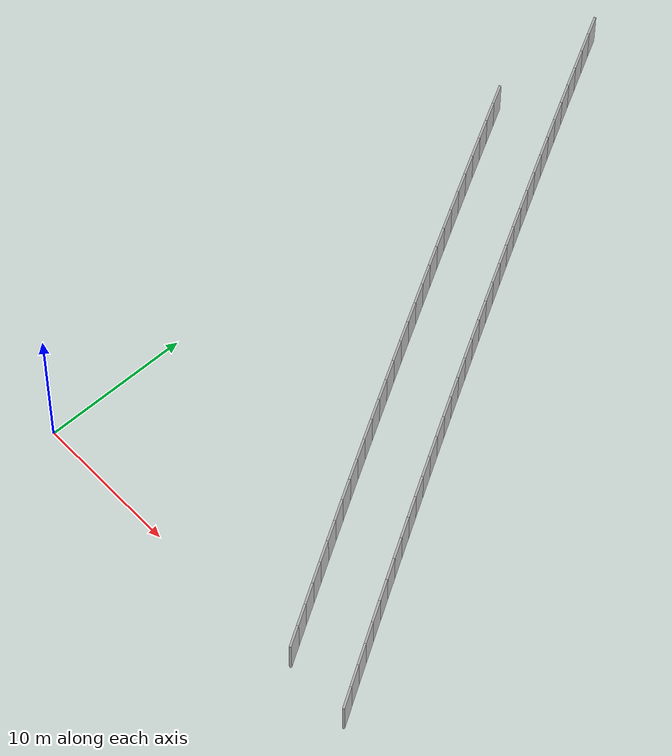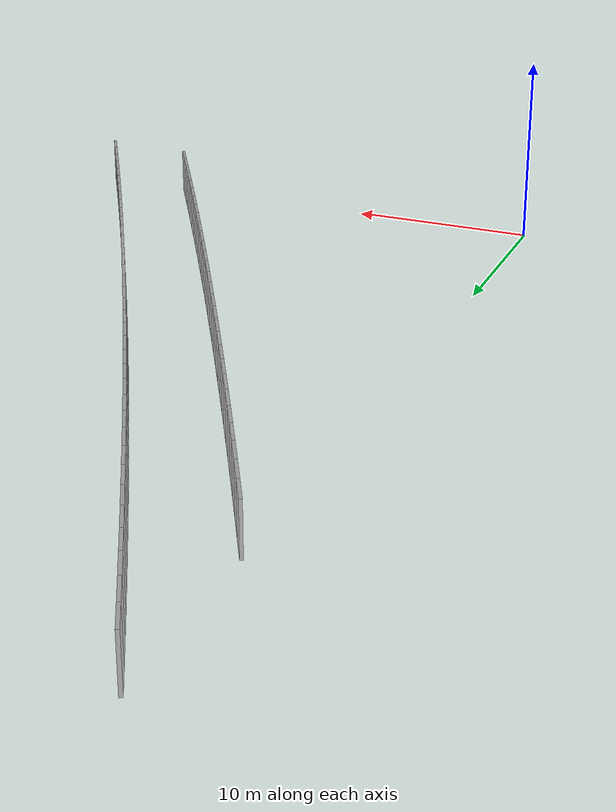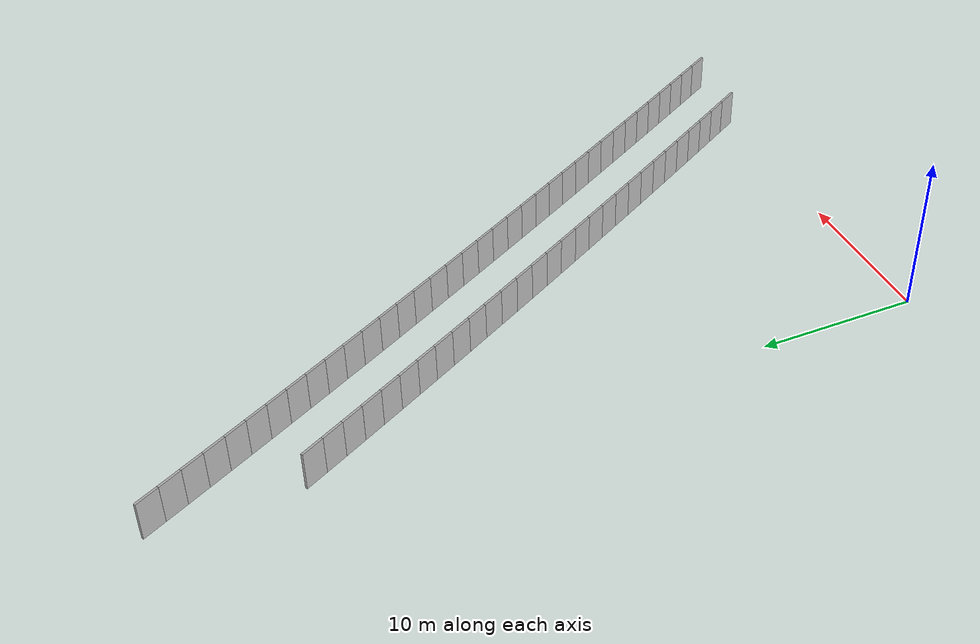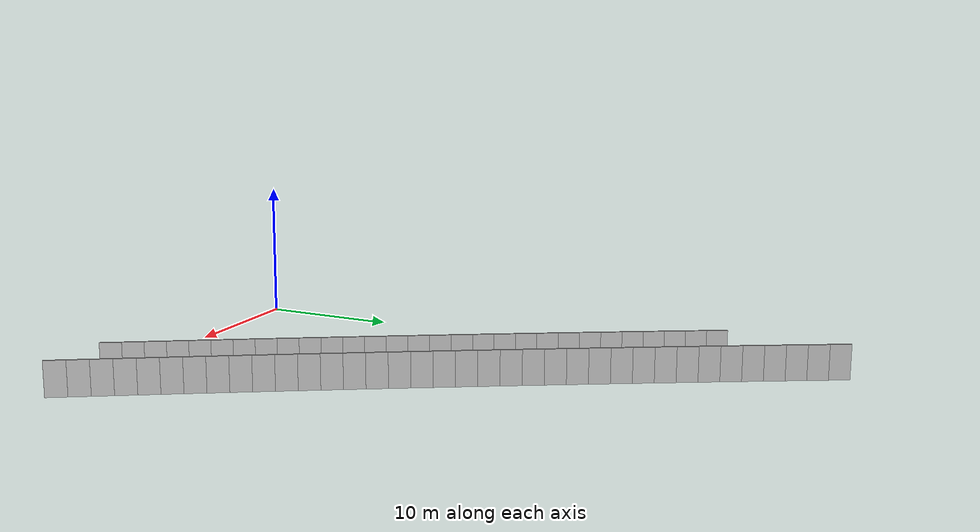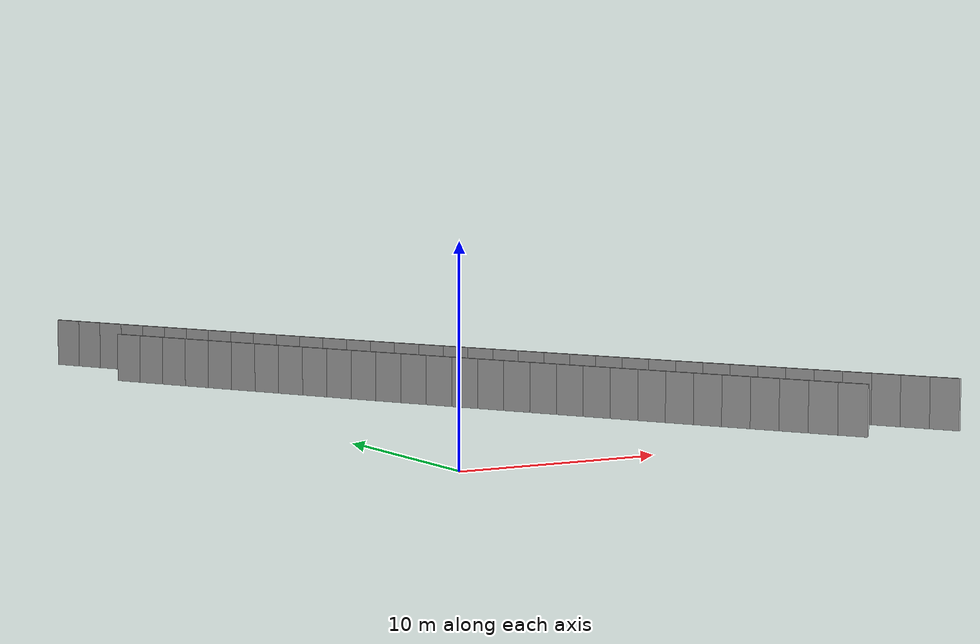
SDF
<?xml version="1.0" ?>
<sdf version="1.6">
  <model name="sps_0613">
    <pose frame="">0 0 0 0 -0 0</pose>
    <static>1</static>
    <self_collide>0</self_collide>
    <allow_auto_disable>0</allow_auto_disable>
    <link name="Wall8332">
      <kinematic>0</kinematic>
      <gravity>1</gravity>
      <self_collide>0</self_collide>
      <collision name="collision">
        <geometry>
          <box>
            <size>1.49884 0.15 2.5</size>
          </box>
        </geometry>
        <pose frame="">0 0 0 0 -0 0</pose>
      </collision>
      <visual name="visual">
        <geometry>
          <box>
            <size>1.49884 0.15 2.5</size>
          </box>
        </geometry>
        <pose frame="">0 0 0 0 -0 0</pose>
        <cast_shadows>1</cast_shadows>
        <transparency>0.0</transparency>
      </visual>
      <pose frame="">0.592246 36.9346 1.25 0 0 -1.0703</pose>
    </link>
    <link name="Wall8333">
      <kinematic>0</kinematic>
      <gravity>1</gravity>
      <self_collide>0</self_collide>
      <collision name="collision">
        <geometry>
          <box>
            <size>1.49901 0.15 2.5</size>
          </box>
        </geometry>
        <pose frame="">0 0 0 0 -0 0</pose>
      </collision>
      <visual name="visual">
        <geometry>
          <box>
            <size>1.49901 0.15 2.5</size>
          </box>
        </geometry>
        <pose frame="">0 0 0 0 -0 0</pose>
        <cast_shadows>1</cast_shadows>
        <transparency>0.0</transparency>
      </visual>
      <pose frame="">1.31255 35.6201 1.25 0 0 -1.06874</pose>
    </link>
    <link name="Wall8334">
      <kinematic>0</kinematic>
      <gravity>1</gravity>
      <self_collide>0</self_collide>
      <collision name="collision">
        <geometry>
          <box>
            <size>1.49908 0.15 2.5</size>
          </box>
        </geometry>
        <pose frame="">0 0 0 0 -0 0</pose>
      </collision>
      <visual name="visual">
        <geometry>
          <box>
            <size>1.49908 0.15 2.5</size>
          </box>
        </geometry>
        <pose frame="">0 0 0 0 -0 0</pose>
        <cast_shadows>1</cast_shadows>
        <transparency>0.0</transparency>
      </visual>
      <pose frame="">2.03493 34.3066 1.25 0 0 -1.06723</pose>
    </link>
    <link name="Wall8335">
      <kinematic>0</kinematic>
      <gravity>1</gravity>
      <self_collide>0</self_collide>
      <collision name="collision">
        <geometry>
          <box>
            <size>1.49903 0.15 2.5</size>
          </box>
        </geometry>
        <pose frame="">0 0 0 0 -0 0</pose>
      </collision>
      <visual name="visual">
        <geometry>
          <box>
            <size>1.49903 0.15 2.5</size>
          </box>
        </geometry>
        <pose frame="">0 0 0 0 -0 0</pose>
        <cast_shadows>1</cast_shadows>
        <transparency>0.0</transparency>
      </visual>
      <pose frame="">2.75933 32.9942 1.25 0 0 -1.06568</pose>
    </link>
    <link name="Wall8336">
      <kinematic>0</kinematic>
      <gravity>1</gravity>
      <self_collide>0</self_collide>
      <collision name="collision">
        <geometry>
          <box>
            <size>1.49894 0.15 2.5</size>
          </box>
        </geometry>
        <pose frame="">0 0 0 0 -0 0</pose>
      </collision>
      <visual name="visual">
        <geometry>
          <box>
            <size>1.49894 0.15 2.5</size>
          </box>
        </geometry>
        <pose frame="">0 0 0 0 -0 0</pose>
        <cast_shadows>1</cast_shadows>
        <transparency>0.0</transparency>
      </visual>
      <pose frame="">3.48574 31.683 1.25 0 0 -1.06411</pose>
    </link>
    <link name="Wall8337">
      <kinematic>0</kinematic>
      <gravity>1</gravity>
      <self_collide>0</self_collide>
      <collision name="collision">
        <geometry>
          <box>
            <size>1.49894 0.15 2.5</size>
          </box>
        </geometry>
        <pose frame="">0 0 0 0 -0 0</pose>
      </collision>
      <visual name="visual">
        <geometry>
          <box>
            <size>1.49894 0.15 2.5</size>
          </box>
        </geometry>
        <pose frame="">0 0 0 0 -0 0</pose>
        <cast_shadows>1</cast_shadows>
        <transparency>0.0</transparency>
      </visual>
      <pose frame="">4.21426 30.373 1.25 0 0 -1.06243</pose>
    </link>
    <link name="Wall8338">
      <kinematic>0</kinematic>
      <gravity>1</gravity>
      <self_collide>0</self_collide>
      <collision name="collision">
        <geometry>
          <box>
            <size>1.49883 0.15 2.5</size>
          </box>
        </geometry>
        <pose frame="">0 0 0 0 -0 0</pose>
      </collision>
      <visual name="visual">
        <geometry>
          <box>
            <size>1.49883 0.15 2.5</size>
          </box>
        </geometry>
        <pose frame="">0 0 0 0 -0 0</pose>
        <cast_shadows>1</cast_shadows>
        <transparency>0.0</transparency>
      </visual>
      <pose frame="">4.94485 29.0642 1.25 0 0 -1.06089</pose>
    </link>
    <link name="Wall8339">
      <kinematic>0</kinematic>
      <gravity>1</gravity>
      <self_collide>0</self_collide>
      <collision name="collision">
        <geometry>
          <box>
            <size>1.49901 0.15 2.5</size>
          </box>
        </geometry>
        <pose frame="">0 0 0 0 -0 0</pose>
      </collision>
      <visual name="visual">
        <geometry>
          <box>
            <size>1.49901 0.15 2.5</size>
          </box>
        </geometry>
        <pose frame="">0 0 0 0 -0 0</pose>
        <cast_shadows>1</cast_shadows>
        <transparency>0.0</transparency>
      </visual>
      <pose frame="">5.67763 27.7566 1.25 0 0 -1.05909</pose>
    </link>
    <link name="Wall8340">
      <kinematic>0</kinematic>
      <gravity>1</gravity>
      <self_collide>0</self_collide>
      <collision name="collision">
        <geometry>
          <box>
            <size>1.49906 0.15 2.5</size>
          </box>
        </geometry>
        <pose frame="">0 0 0 0 -0 0</pose>
      </collision>
      <visual name="visual">
        <geometry>
          <box>
            <size>1.49906 0.15 2.5</size>
          </box>
        </geometry>
        <pose frame="">0 0 0 0 -0 0</pose>
        <cast_shadows>1</cast_shadows>
        <transparency>0.0</transparency>
      </visual>
      <pose frame="">6.41256 26.4501 1.25 0 0 -1.05771</pose>
    </link>
    <link name="Wall8341">
      <kinematic>0</kinematic>
      <gravity>1</gravity>
      <self_collide>0</self_collide>
      <collision name="collision">
        <geometry>
          <box>
            <size>1.49905 0.15 2.5</size>
          </box>
        </geometry>
        <pose frame="">0 0 0 0 -0 0</pose>
      </collision>
      <visual name="visual">
        <geometry>
          <box>
            <size>1.49905 0.15 2.5</size>
          </box>
        </geometry>
        <pose frame="">0 0 0 0 -0 0</pose>
        <cast_shadows>1</cast_shadows>
        <transparency>0.0</transparency>
      </visual>
      <pose frame="">7.14947 25.1447 1.25 0 0 -1.05607</pose>
    </link>
    <link name="Wall8342">
      <kinematic>0</kinematic>
      <gravity>1</gravity>
      <self_collide>0</self_collide>
      <collision name="collision">
        <geometry>
          <box>
            <size>1.49867 0.15 2.5</size>
          </box>
        </geometry>
        <pose frame="">0 0 0 0 -0 0</pose>
      </collision>
      <visual name="visual">
        <geometry>
          <box>
            <size>1.49867 0.15 2.5</size>
          </box>
        </geometry>
        <pose frame="">0 0 0 0 -0 0</pose>
        <cast_shadows>1</cast_shadows>
        <transparency>0.0</transparency>
      </visual>
      <pose frame="">7.88836 23.8406 1.25 0 0 -1.05452</pose>
    </link>
    <link name="Wall8343">
      <kinematic>0</kinematic>
      <gravity>1</gravity>
      <self_collide>0</self_collide>
      <collision name="collision">
        <geometry>
          <box>
            <size>1.49896 0.15 2.5</size>
          </box>
        </geometry>
        <pose frame="">0 0 0 0 -0 0</pose>
      </collision>
      <visual name="visual">
        <geometry>
          <box>
            <size>1.49896 0.15 2.5</size>
          </box>
        </geometry>
        <pose frame="">0 0 0 0 -0 0</pose>
        <cast_shadows>1</cast_shadows>
        <transparency>0.0</transparency>
      </visual>
      <pose frame="">8.62926 22.5377 1.25 0 0 -1.05295</pose>
    </link>
    <link name="Wall8344">
      <kinematic>0</kinematic>
      <gravity>1</gravity>
      <self_collide>0</self_collide>
      <collision name="collision">
        <geometry>
          <box>
            <size>1.4989 0.15 2.5</size>
          </box>
        </geometry>
        <pose frame="">0 0 0 0 -0 0</pose>
      </collision>
      <visual name="visual">
        <geometry>
          <box>
            <size>1.4989 0.15 2.5</size>
          </box>
        </geometry>
        <pose frame="">0 0 0 0 -0 0</pose>
        <cast_shadows>1</cast_shadows>
        <transparency>0.0</transparency>
      </visual>
      <pose frame="">9.37228 21.2359 1.25 0 0 -1.05138</pose>
    </link>
    <link name="Wall8345">
      <kinematic>0</kinematic>
      <gravity>1</gravity>
      <self_collide>0</self_collide>
      <collision name="collision">
        <geometry>
          <box>
            <size>1.49906 0.15 2.5</size>
          </box>
        </geometry>
        <pose frame="">0 0 0 0 -0 0</pose>
      </collision>
      <visual name="visual">
        <geometry>
          <box>
            <size>1.49906 0.15 2.5</size>
          </box>
        </geometry>
        <pose frame="">0 0 0 0 -0 0</pose>
        <cast_shadows>1</cast_shadows>
        <transparency>0.0</transparency>
      </visual>
      <pose frame="">10.1174 19.9352 1.25 0 0 -1.0498</pose>
    </link>
    <link name="Wall8346">
      <kinematic>0</kinematic>
      <gravity>1</gravity>
      <self_collide>0</self_collide>
      <collision name="collision">
        <geometry>
          <box>
            <size>1.49881 0.15 2.5</size>
          </box>
        </geometry>
        <pose frame="">0 0 0 0 -0 0</pose>
      </collision>
      <visual name="visual">
        <geometry>
          <box>
            <size>1.49881 0.15 2.5</size>
          </box>
        </geometry>
        <pose frame="">0 0 0 0 -0 0</pose>
        <cast_shadows>1</cast_shadows>
        <transparency>0.0</transparency>
      </visual>
      <pose frame="">10.8644 18.6357 1.25 0 0 -1.04829</pose>
    </link>
    <link name="Wall8347">
      <kinematic>0</kinematic>
      <gravity>1</gravity>
      <self_collide>0</self_collide>
      <collision name="collision">
        <geometry>
          <box>
            <size>1.49904 0.15 2.5</size>
          </box>
        </geometry>
        <pose frame="">0 0 0 0 -0 0</pose>
      </collision>
      <visual name="visual">
        <geometry>
          <box>
            <size>1.49904 0.15 2.5</size>
          </box>
        </geometry>
        <pose frame="">0 0 0 0 -0 0</pose>
        <cast_shadows>1</cast_shadows>
        <transparency>0.0</transparency>
      </visual>
      <pose frame="">11.6135 17.3374 1.25 0 0 -1.04664</pose>
    </link>
    <link name="Wall8348">
      <kinematic>0</kinematic>
      <gravity>1</gravity>
      <self_collide>0</self_collide>
      <collision name="collision">
        <geometry>
          <box>
            <size>1.49881 0.15 2.5</size>
          </box>
        </geometry>
        <pose frame="">0 0 0 0 -0 0</pose>
      </collision>
      <visual name="visual">
        <geometry>
          <box>
            <size>1.49881 0.15 2.5</size>
          </box>
        </geometry>
        <pose frame="">0 0 0 0 -0 0</pose>
        <cast_shadows>1</cast_shadows>
        <transparency>0.0</transparency>
      </visual>
      <pose frame="">12.3648 16.0403 1.25 0 0 -1.04504</pose>
    </link>
    <link name="Wall8349">
      <kinematic>0</kinematic>
      <gravity>1</gravity>
      <self_collide>0</self_collide>
      <collision name="collision">
        <geometry>
          <box>
            <size>1.49907 0.15 2.5</size>
          </box>
        </geometry>
        <pose frame="">0 0 0 0 -0 0</pose>
      </collision>
      <visual name="visual">
        <geometry>
          <box>
            <size>1.49907 0.15 2.5</size>
          </box>
        </geometry>
        <pose frame="">0 0 0 0 -0 0</pose>
        <cast_shadows>1</cast_shadows>
        <transparency>0.0</transparency>
      </visual>
      <pose frame="">13.1181 14.7444 1.25 0 0 -1.04345</pose>
    </link>
    <link name="Wall8350">
      <kinematic>0</kinematic>
      <gravity>1</gravity>
      <self_collide>0</self_collide>
      <collision name="collision">
        <geometry>
          <box>
            <size>1.49903 0.15 2.5</size>
          </box>
        </geometry>
        <pose frame="">0 0 0 0 -0 0</pose>
      </collision>
      <visual name="visual">
        <geometry>
          <box>
            <size>1.49903 0.15 2.5</size>
          </box>
        </geometry>
        <pose frame="">0 0 0 0 -0 0</pose>
        <cast_shadows>1</cast_shadows>
        <transparency>0.0</transparency>
      </visual>
      <pose frame="">13.8735 13.4496 1.25 0 0 -1.04188</pose>
    </link>
    <link name="Wall8351">
      <kinematic>0</kinematic>
      <gravity>1</gravity>
      <self_collide>0</self_collide>
      <collision name="collision">
        <geometry>
          <box>
            <size>1.4988 0.15 2.5</size>
          </box>
        </geometry>
        <pose frame="">0 0 0 0 -0 0</pose>
      </collision>
      <visual name="visual">
        <geometry>
          <box>
            <size>1.4988 0.15 2.5</size>
          </box>
        </geometry>
        <pose frame="">0 0 0 0 -0 0</pose>
        <cast_shadows>1</cast_shadows>
        <transparency>0.0</transparency>
      </visual>
      <pose frame="">14.6309 12.1561 1.25 0 0 -1.04028</pose>
    </link>
    <link name="Wall8352">
      <kinematic>0</kinematic>
      <gravity>1</gravity>
      <self_collide>0</self_collide>
      <collision name="collision">
        <geometry>
          <box>
            <size>1.49901 0.15 2.5</size>
          </box>
        </geometry>
        <pose frame="">0 0 0 0 -0 0</pose>
      </collision>
      <visual name="visual">
        <geometry>
          <box>
            <size>1.49901 0.15 2.5</size>
          </box>
        </geometry>
        <pose frame="">0 0 0 0 -0 0</pose>
        <cast_shadows>1</cast_shadows>
        <transparency>0.0</transparency>
      </visual>
      <pose frame="">15.3903 10.8638 1.25 0 0 -1.03876</pose>
    </link>
    <link name="Wall8353">
      <kinematic>0</kinematic>
      <gravity>1</gravity>
      <self_collide>0</self_collide>
      <collision name="collision">
        <geometry>
          <box>
            <size>1.49905 0.15 2.5</size>
          </box>
        </geometry>
        <pose frame="">0 0 0 0 -0 0</pose>
      </collision>
      <visual name="visual">
        <geometry>
          <box>
            <size>1.49905 0.15 2.5</size>
          </box>
        </geometry>
        <pose frame="">0 0 0 0 -0 0</pose>
        <cast_shadows>1</cast_shadows>
        <transparency>0.0</transparency>
      </visual>
      <pose frame="">16.1518 9.57262 1.25 0 0 -1.03712</pose>
    </link>
    <link name="Wall8354">
      <kinematic>0</kinematic>
      <gravity>1</gravity>
      <self_collide>0</self_collide>
      <collision name="collision">
        <geometry>
          <box>
            <size>1.49861 0.15 2.5</size>
          </box>
        </geometry>
        <pose frame="">0 0 0 0 -0 0</pose>
      </collision>
      <visual name="visual">
        <geometry>
          <box>
            <size>1.49861 0.15 2.5</size>
          </box>
        </geometry>
        <pose frame="">0 0 0 0 -0 0</pose>
        <cast_shadows>1</cast_shadows>
        <transparency>0.0</transparency>
      </visual>
      <pose frame="">16.9152 8.28282 1.25 0 0 -1.03552</pose>
    </link>
    <link name="Wall8355">
      <kinematic>0</kinematic>
      <gravity>1</gravity>
      <self_collide>0</self_collide>
      <collision name="collision">
        <geometry>
          <box>
            <size>1.49896 0.15 2.5</size>
          </box>
        </geometry>
        <pose frame="">0 0 0 0 -0 0</pose>
      </collision>
      <visual name="visual">
        <geometry>
          <box>
            <size>1.49896 0.15 2.5</size>
          </box>
        </geometry>
        <pose frame="">0 0 0 0 -0 0</pose>
        <cast_shadows>1</cast_shadows>
        <transparency>0.0</transparency>
      </visual>
      <pose frame="">17.6807 6.99422 1.25 0 0 -1.0341</pose>
    </link>
    <link name="Wall8356">
      <kinematic>0</kinematic>
      <gravity>1</gravity>
      <self_collide>0</self_collide>
      <collision name="collision">
        <geometry>
          <box>
            <size>1.49888 0.15 2.5</size>
          </box>
        </geometry>
        <pose frame="">0 0 0 0 -0 0</pose>
      </collision>
      <visual name="visual">
        <geometry>
          <box>
            <size>1.49888 0.15 2.5</size>
          </box>
        </geometry>
        <pose frame="">0 0 0 0 -0 0</pose>
        <cast_shadows>1</cast_shadows>
        <transparency>0.0</transparency>
      </visual>
      <pose frame="">18.4482 5.70671 1.25 0 0 -1.03236</pose>
    </link>
    <link name="Wall8357">
      <kinematic>0</kinematic>
      <gravity>1</gravity>
      <self_collide>0</self_collide>
      <collision name="collision">
        <geometry>
          <box>
            <size>1.49904 0.15 2.5</size>
          </box>
        </geometry>
        <pose frame="">0 0 0 0 -0 0</pose>
      </collision>
      <visual name="visual">
        <geometry>
          <box>
            <size>1.49904 0.15 2.5</size>
          </box>
        </geometry>
        <pose frame="">0 0 0 0 -0 0</pose>
        <cast_shadows>1</cast_shadows>
        <transparency>0.0</transparency>
      </visual>
      <pose frame="">19.2178 4.42039 1.25 0 0 -1.03091</pose>
    </link>
    <link name="Wall8358">
      <kinematic>0</kinematic>
      <gravity>1</gravity>
      <self_collide>0</self_collide>
      <collision name="collision">
        <geometry>
          <box>
            <size>1.49882 0.15 2.5</size>
          </box>
        </geometry>
        <pose frame="">0 0 0 0 -0 0</pose>
      </collision>
      <visual name="visual">
        <geometry>
          <box>
            <size>1.49882 0.15 2.5</size>
          </box>
        </geometry>
        <pose frame="">0 0 0 0 -0 0</pose>
        <cast_shadows>1</cast_shadows>
        <transparency>0.0</transparency>
      </visual>
      <pose frame="">19.9893 3.1353 1.25 0 0 -1.02925</pose>
    </link>
    <link name="Wall8359">
      <kinematic>0</kinematic>
      <gravity>1</gravity>
      <self_collide>0</self_collide>
      <collision name="collision">
        <geometry>
          <box>
            <size>1.499 0.15 2.5</size>
          </box>
        </geometry>
        <pose frame="">0 0 0 0 -0 0</pose>
      </collision>
      <visual name="visual">
        <geometry>
          <box>
            <size>1.499 0.15 2.5</size>
          </box>
        </geometry>
        <pose frame="">0 0 0 0 -0 0</pose>
        <cast_shadows>1</cast_shadows>
        <transparency>0.0</transparency>
      </visual>
      <pose frame="">20.7631 1.85152 1.25 0 0 -1.02756</pose>
    </link>
    <link name="Wall8360">
      <kinematic>0</kinematic>
      <gravity>1</gravity>
      <self_collide>0</self_collide>
      <collision name="collision">
        <geometry>
          <box>
            <size>1.49892 0.15 2.5</size>
          </box>
        </geometry>
        <pose frame="">0 0 0 0 -0 0</pose>
      </collision>
      <visual name="visual">
        <geometry>
          <box>
            <size>1.49892 0.15 2.5</size>
          </box>
        </geometry>
        <pose frame="">0 0 0 0 -0 0</pose>
        <cast_shadows>1</cast_shadows>
        <transparency>0.0</transparency>
      </visual>
      <pose frame="">21.5388 0.568892 1.25 0 0 -1.02615</pose>
    </link>
    <link name="Wall9408">
      <kinematic>0</kinematic>
      <gravity>1</gravity>
      <self_collide>0</self_collide>
      <collision name="collision">
        <geometry>
          <box>
            <size>1.49239 0.15 2.5</size>
          </box>
        </geometry>
        <pose frame="">0 0 0 0 -0 0</pose>
      </collision>
      <visual name="visual">
        <geometry>
          <box>
            <size>1.49239 0.15 2.5</size>
          </box>
        </geometry>
        <pose frame="">0 0 0 0 -0 0</pose>
        <cast_shadows>1</cast_shadows>
        <transparency>0.0</transparency>
      </visual>
      <pose frame="">0.669944 45.4822 1.25 0 0 -1.07817</pose>
    </link>
    <link name="Wall9409">
      <kinematic>0</kinematic>
      <gravity>1</gravity>
      <self_collide>0</self_collide>
      <collision name="collision">
        <geometry>
          <box>
            <size>1.49243 0.15 2.5</size>
          </box>
        </geometry>
        <pose frame="">0 0 0 0 -0 0</pose>
      </collision>
      <visual name="visual">
        <geometry>
          <box>
            <size>1.49243 0.15 2.5</size>
          </box>
        </geometry>
        <pose frame="">0 0 0 0 -0 0</pose>
        <cast_shadows>1</cast_shadows>
        <transparency>0.0</transparency>
      </visual>
      <pose frame="">1.37664 44.1677 1.25 0 0 -1.07684</pose>
    </link>
    <link name="Wall9410">
      <kinematic>0</kinematic>
      <gravity>1</gravity>
      <self_collide>0</self_collide>
      <collision name="collision">
        <geometry>
          <box>
            <size>1.49267 0.15 2.5</size>
          </box>
        </geometry>
        <pose frame="">0 0 0 0 -0 0</pose>
      </collision>
      <visual name="visual">
        <geometry>
          <box>
            <size>1.49267 0.15 2.5</size>
          </box>
        </geometry>
        <pose frame="">0 0 0 0 -0 0</pose>
        <cast_shadows>1</cast_shadows>
        <transparency>0.0</transparency>
      </visual>
      <pose frame="">2.08544 42.8542 1.25 0 0 -1.07507</pose>
    </link>
    <link name="Wall9411">
      <kinematic>0</kinematic>
      <gravity>1</gravity>
      <self_collide>0</self_collide>
      <collision name="collision">
        <geometry>
          <box>
            <size>1.49196 0.15 2.5</size>
          </box>
        </geometry>
        <pose frame="">0 0 0 0 -0 0</pose>
      </collision>
      <visual name="visual">
        <geometry>
          <box>
            <size>1.49196 0.15 2.5</size>
          </box>
        </geometry>
        <pose frame="">0 0 0 0 -0 0</pose>
        <cast_shadows>1</cast_shadows>
        <transparency>0.0</transparency>
      </visual>
      <pose frame="">2.79635 41.5421 1.25 0 0 -1.07346</pose>
    </link>
    <link name="Wall9412">
      <kinematic>0</kinematic>
      <gravity>1</gravity>
      <self_collide>0</self_collide>
      <collision name="collision">
        <geometry>
          <box>
            <size>1.49247 0.15 2.5</size>
          </box>
        </geometry>
        <pose frame="">0 0 0 0 -0 0</pose>
      </collision>
      <visual name="visual">
        <geometry>
          <box>
            <size>1.49247 0.15 2.5</size>
          </box>
        </geometry>
        <pose frame="">0 0 0 0 -0 0</pose>
        <cast_shadows>1</cast_shadows>
        <transparency>0.0</transparency>
      </visual>
      <pose frame="">3.50924 40.2312 1.25 0 0 -1.07197</pose>
    </link>
    <link name="Wall9413">
      <kinematic>0</kinematic>
      <gravity>1</gravity>
      <self_collide>0</self_collide>
      <collision name="collision">
        <geometry>
          <box>
            <size>1.49232 0.15 2.5</size>
          </box>
        </geometry>
        <pose frame="">0 0 0 0 -0 0</pose>
      </collision>
      <visual name="visual">
        <geometry>
          <box>
            <size>1.49232 0.15 2.5</size>
          </box>
        </geometry>
        <pose frame="">0 0 0 0 -0 0</pose>
        <cast_shadows>1</cast_shadows>
        <transparency>0.0</transparency>
      </visual>
      <pose frame="">4.22436 38.9213 1.25 0 0 -1.07019</pose>
    </link>
    <link name="Wall9414">
      <kinematic>0</kinematic>
      <gravity>1</gravity>
      <self_collide>0</self_collide>
      <collision name="collision">
        <geometry>
          <box>
            <size>1.49257 0.15 2.5</size>
          </box>
        </geometry>
        <pose frame="">0 0 0 0 -0 0</pose>
      </collision>
      <visual name="visual">
        <geometry>
          <box>
            <size>1.49257 0.15 2.5</size>
          </box>
        </geometry>
        <pose frame="">0 0 0 0 -0 0</pose>
        <cast_shadows>1</cast_shadows>
        <transparency>0.0</transparency>
      </visual>
      <pose frame="">4.94158 37.6125 1.25 0 0 -1.06879</pose>
    </link>
    <link name="Wall9415">
      <kinematic>0</kinematic>
      <gravity>1</gravity>
      <self_collide>0</self_collide>
      <collision name="collision">
        <geometry>
          <box>
            <size>1.49222 0.15 2.5</size>
          </box>
        </geometry>
        <pose frame="">0 0 0 0 -0 0</pose>
      </collision>
      <visual name="visual">
        <geometry>
          <box>
            <size>1.49222 0.15 2.5</size>
          </box>
        </geometry>
        <pose frame="">0 0 0 0 -0 0</pose>
        <cast_shadows>1</cast_shadows>
        <transparency>0.0</transparency>
      </visual>
      <pose frame="">5.66076 36.3048 1.25 0 0 -1.06717</pose>
    </link>
    <link name="Wall9416">
      <kinematic>0</kinematic>
      <gravity>1</gravity>
      <self_collide>0</self_collide>
      <collision name="collision">
        <geometry>
          <box>
            <size>1.49235 0.15 2.5</size>
          </box>
        </geometry>
        <pose frame="">0 0 0 0 -0 0</pose>
      </collision>
      <visual name="visual">
        <geometry>
          <box>
            <size>1.49235 0.15 2.5</size>
          </box>
        </geometry>
        <pose frame="">0 0 0 0 -0 0</pose>
        <cast_shadows>1</cast_shadows>
        <transparency>0.0</transparency>
      </visual>
      <pose frame="">6.38204 34.9984 1.25 0 0 -1.06549</pose>
    </link>
    <link name="Wall9417">
      <kinematic>0</kinematic>
      <gravity>1</gravity>
      <self_collide>0</self_collide>
      <collision name="collision">
        <geometry>
          <box>
            <size>1.49246 0.15 2.5</size>
          </box>
        </geometry>
        <pose frame="">0 0 0 0 -0 0</pose>
      </collision>
      <visual name="visual">
        <geometry>
          <box>
            <size>1.49246 0.15 2.5</size>
          </box>
        </geometry>
        <pose frame="">0 0 0 0 -0 0</pose>
        <cast_shadows>1</cast_shadows>
        <transparency>0.0</transparency>
      </visual>
      <pose frame="">7.10534 33.693 1.25 0 0 -1.06417</pose>
    </link>
    <link name="Wall9418">
      <kinematic>0</kinematic>
      <gravity>1</gravity>
      <self_collide>0</self_collide>
      <collision name="collision">
        <geometry>
          <box>
            <size>1.49242 0.15 2.5</size>
          </box>
        </geometry>
        <pose frame="">0 0 0 0 -0 0</pose>
      </collision>
      <visual name="visual">
        <geometry>
          <box>
            <size>1.49242 0.15 2.5</size>
          </box>
        </geometry>
        <pose frame="">0 0 0 0 -0 0</pose>
        <cast_shadows>1</cast_shadows>
        <transparency>0.0</transparency>
      </visual>
      <pose frame="">7.83074 32.3887 1.25 0 0 -1.06229</pose>
    </link>
    <link name="Wall9419">
      <kinematic>0</kinematic>
      <gravity>1</gravity>
      <self_collide>0</self_collide>
      <collision name="collision">
        <geometry>
          <box>
            <size>1.49243 0.15 2.5</size>
          </box>
        </geometry>
        <pose frame="">0 0 0 0 -0 0</pose>
      </collision>
      <visual name="visual">
        <geometry>
          <box>
            <size>1.49243 0.15 2.5</size>
          </box>
        </geometry>
        <pose frame="">0 0 0 0 -0 0</pose>
        <cast_shadows>1</cast_shadows>
        <transparency>0.0</transparency>
      </visual>
      <pose frame="">8.55825 31.0856 1.25 0 0 -1.06093</pose>
    </link>
    <link name="Wall9420">
      <kinematic>0</kinematic>
      <gravity>1</gravity>
      <self_collide>0</self_collide>
      <collision name="collision">
        <geometry>
          <box>
            <size>1.49244 0.15 2.5</size>
          </box>
        </geometry>
        <pose frame="">0 0 0 0 -0 0</pose>
      </collision>
      <visual name="visual">
        <geometry>
          <box>
            <size>1.49244 0.15 2.5</size>
          </box>
        </geometry>
        <pose frame="">0 0 0 0 -0 0</pose>
        <cast_shadows>1</cast_shadows>
        <transparency>0.0</transparency>
      </visual>
      <pose frame="">9.28774 29.7836 1.25 0 0 -1.05925</pose>
    </link>
    <link name="Wall9421">
      <kinematic>0</kinematic>
      <gravity>1</gravity>
      <self_collide>0</self_collide>
      <collision name="collision">
        <geometry>
          <box>
            <size>1.49228 0.15 2.5</size>
          </box>
        </geometry>
        <pose frame="">0 0 0 0 -0 0</pose>
      </collision>
      <visual name="visual">
        <geometry>
          <box>
            <size>1.49228 0.15 2.5</size>
          </box>
        </geometry>
        <pose frame="">0 0 0 0 -0 0</pose>
        <cast_shadows>1</cast_shadows>
        <transparency>0.0</transparency>
      </visual>
      <pose frame="">10.0192 28.4828 1.25 0 0 -1.05778</pose>
    </link>
    <link name="Wall9422">
      <kinematic>0</kinematic>
      <gravity>1</gravity>
      <self_collide>0</self_collide>
      <collision name="collision">
        <geometry>
          <box>
            <size>1.49251 0.15 2.5</size>
          </box>
        </geometry>
        <pose frame="">0 0 0 0 -0 0</pose>
      </collision>
      <visual name="visual">
        <geometry>
          <box>
            <size>1.49251 0.15 2.5</size>
          </box>
        </geometry>
        <pose frame="">0 0 0 0 -0 0</pose>
        <cast_shadows>1</cast_shadows>
        <transparency>0.0</transparency>
      </visual>
      <pose frame="">10.7528 27.1831 1.25 0 0 -1.05617</pose>
    </link>
    <link name="Wall9423">
      <kinematic>0</kinematic>
      <gravity>1</gravity>
      <self_collide>0</self_collide>
      <collision name="collision">
        <geometry>
          <box>
            <size>1.49239 0.15 2.5</size>
          </box>
        </geometry>
        <pose frame="">0 0 0 0 -0 0</pose>
      </collision>
      <visual name="visual">
        <geometry>
          <box>
            <size>1.49239 0.15 2.5</size>
          </box>
        </geometry>
        <pose frame="">0 0 0 0 -0 0</pose>
        <cast_shadows>1</cast_shadows>
        <transparency>0.0</transparency>
      </visual>
      <pose frame="">11.4885 25.8846 1.25 0 0 -1.05449</pose>
    </link>
    <link name="Wall9424">
      <kinematic>0</kinematic>
      <gravity>1</gravity>
      <self_collide>0</self_collide>
      <collision name="collision">
        <geometry>
          <box>
            <size>1.49246 0.15 2.5</size>
          </box>
        </geometry>
        <pose frame="">0 0 0 0 -0 0</pose>
      </collision>
      <visual name="visual">
        <geometry>
          <box>
            <size>1.49246 0.15 2.5</size>
          </box>
        </geometry>
        <pose frame="">0 0 0 0 -0 0</pose>
        <cast_shadows>1</cast_shadows>
        <transparency>0.0</transparency>
      </visual>
      <pose frame="">12.2262 24.5873 1.25 0 0 -1.05291</pose>
    </link>
    <link name="Wall9425">
      <kinematic>0</kinematic>
      <gravity>1</gravity>
      <self_collide>0</self_collide>
      <collision name="collision">
        <geometry>
          <box>
            <size>1.49257 0.15 2.5</size>
          </box>
        </geometry>
        <pose frame="">0 0 0 0 -0 0</pose>
      </collision>
      <visual name="visual">
        <geometry>
          <box>
            <size>1.49257 0.15 2.5</size>
          </box>
        </geometry>
        <pose frame="">0 0 0 0 -0 0</pose>
        <cast_shadows>1</cast_shadows>
        <transparency>0.0</transparency>
      </visual>
      <pose frame="">12.9661 23.2911 1.25 0 0 -1.05131</pose>
    </link>
    <link name="Wall9426">
      <kinematic>0</kinematic>
      <gravity>1</gravity>
      <self_collide>0</self_collide>
      <collision name="collision">
        <geometry>
          <box>
            <size>1.4922 0.15 2.5</size>
          </box>
        </geometry>
        <pose frame="">0 0 0 0 -0 0</pose>
      </collision>
      <visual name="visual">
        <geometry>
          <box>
            <size>1.4922 0.15 2.5</size>
          </box>
        </geometry>
        <pose frame="">0 0 0 0 -0 0</pose>
        <cast_shadows>1</cast_shadows>
        <transparency>0.0</transparency>
      </visual>
      <pose frame="">13.708 21.9962 1.25 0 0 -1.04975</pose>
    </link>
    <link name="Wall9427">
      <kinematic>0</kinematic>
      <gravity>1</gravity>
      <self_collide>0</self_collide>
      <collision name="collision">
        <geometry>
          <box>
            <size>1.49231 0.15 2.5</size>
          </box>
        </geometry>
        <pose frame="">0 0 0 0 -0 0</pose>
      </collision>
      <visual name="visual">
        <geometry>
          <box>
            <size>1.49231 0.15 2.5</size>
          </box>
        </geometry>
        <pose frame="">0 0 0 0 -0 0</pose>
        <cast_shadows>1</cast_shadows>
        <transparency>0.0</transparency>
      </visual>
      <pose frame="">14.4518 20.7025 1.25 0 0 -1.04824</pose>
    </link>
    <link name="Wall9428">
      <kinematic>0</kinematic>
      <gravity>1</gravity>
      <self_collide>0</self_collide>
      <collision name="collision">
        <geometry>
          <box>
            <size>1.49246 0.15 2.5</size>
          </box>
        </geometry>
        <pose frame="">0 0 0 0 -0 0</pose>
      </collision>
      <visual name="visual">
        <geometry>
          <box>
            <size>1.49246 0.15 2.5</size>
          </box>
        </geometry>
        <pose frame="">0 0 0 0 -0 0</pose>
        <cast_shadows>1</cast_shadows>
        <transparency>0.0</transparency>
      </visual>
      <pose frame="">15.1977 19.4099 1.25 0 0 -1.04659</pose>
    </link>
    <link name="Wall9429">
      <kinematic>0</kinematic>
      <gravity>1</gravity>
      <self_collide>0</self_collide>
      <collision name="collision">
        <geometry>
          <box>
            <size>1.49239 0.15 2.5</size>
          </box>
        </geometry>
        <pose frame="">0 0 0 0 -0 0</pose>
      </collision>
      <visual name="visual">
        <geometry>
          <box>
            <size>1.49239 0.15 2.5</size>
          </box>
        </geometry>
        <pose frame="">0 0 0 0 -0 0</pose>
        <cast_shadows>1</cast_shadows>
        <transparency>0.0</transparency>
      </visual>
      <pose frame="">15.9456 18.1184 1.25 0 0 -1.0452</pose>
    </link>
    <link name="Wall9430">
      <kinematic>0</kinematic>
      <gravity>1</gravity>
      <self_collide>0</self_collide>
      <collision name="collision">
        <geometry>
          <box>
            <size>1.49237 0.15 2.5</size>
          </box>
        </geometry>
        <pose frame="">0 0 0 0 -0 0</pose>
      </collision>
      <visual name="visual">
        <geometry>
          <box>
            <size>1.49237 0.15 2.5</size>
          </box>
        </geometry>
        <pose frame="">0 0 0 0 -0 0</pose>
        <cast_shadows>1</cast_shadows>
        <transparency>0.0</transparency>
      </visual>
      <pose frame="">16.6955 16.8281 1.25 0 0 -1.04344</pose>
    </link>
    <link name="Wall9431">
      <kinematic>0</kinematic>
      <gravity>1</gravity>
      <self_collide>0</self_collide>
      <collision name="collision">
        <geometry>
          <box>
            <size>1.49251 0.15 2.5</size>
          </box>
        </geometry>
        <pose frame="">0 0 0 0 -0 0</pose>
      </collision>
      <visual name="visual">
        <geometry>
          <box>
            <size>1.49251 0.15 2.5</size>
          </box>
        </geometry>
        <pose frame="">0 0 0 0 -0 0</pose>
        <cast_shadows>1</cast_shadows>
        <transparency>0.0</transparency>
      </visual>
      <pose frame="">17.4476 15.539 1.25 0 0 -1.04198</pose>
    </link>
    <link name="Wall9432">
      <kinematic>0</kinematic>
      <gravity>1</gravity>
      <self_collide>0</self_collide>
      <collision name="collision">
        <geometry>
          <box>
            <size>1.49235 0.15 2.5</size>
          </box>
        </geometry>
        <pose frame="">0 0 0 0 -0 0</pose>
      </collision>
      <visual name="visual">
        <geometry>
          <box>
            <size>1.49235 0.15 2.5</size>
          </box>
        </geometry>
        <pose frame="">0 0 0 0 -0 0</pose>
        <cast_shadows>1</cast_shadows>
        <transparency>0.0</transparency>
      </visual>
      <pose frame="">18.2017 14.2511 1.25 0 0 -1.04021</pose>
    </link>
    <link name="Wall9433">
      <kinematic>0</kinematic>
      <gravity>1</gravity>
      <self_collide>0</self_collide>
      <collision name="collision">
        <geometry>
          <box>
            <size>1.49237 0.15 2.5</size>
          </box>
        </geometry>
        <pose frame="">0 0 0 0 -0 0</pose>
      </collision>
      <visual name="visual">
        <geometry>
          <box>
            <size>1.49237 0.15 2.5</size>
          </box>
        </geometry>
        <pose frame="">0 0 0 0 -0 0</pose>
        <cast_shadows>1</cast_shadows>
        <transparency>0.0</transparency>
      </visual>
      <pose frame="">18.9578 12.9645 1.25 0 0 -1.03865</pose>
    </link>
    <link name="Wall9434">
      <kinematic>0</kinematic>
      <gravity>1</gravity>
      <self_collide>0</self_collide>
      <collision name="collision">
        <geometry>
          <box>
            <size>1.4925 0.15 2.5</size>
          </box>
        </geometry>
        <pose frame="">0 0 0 0 -0 0</pose>
      </collision>
      <visual name="visual">
        <geometry>
          <box>
            <size>1.4925 0.15 2.5</size>
          </box>
        </geometry>
        <pose frame="">0 0 0 0 -0 0</pose>
        <cast_shadows>1</cast_shadows>
        <transparency>0.0</transparency>
      </visual>
      <pose frame="">19.7161 11.679 1.25 0 0 -1.03714</pose>
    </link>
    <link name="Wall9435">
      <kinematic>0</kinematic>
      <gravity>1</gravity>
      <self_collide>0</self_collide>
      <collision name="collision">
        <geometry>
          <box>
            <size>1.49225 0.15 2.5</size>
          </box>
        </geometry>
        <pose frame="">0 0 0 0 -0 0</pose>
      </collision>
      <visual name="visual">
        <geometry>
          <box>
            <size>1.49225 0.15 2.5</size>
          </box>
        </geometry>
        <pose frame="">0 0 0 0 -0 0</pose>
        <cast_shadows>1</cast_shadows>
        <transparency>0.0</transparency>
      </visual>
      <pose frame="">20.4762 10.3947 1.25 0 0 -1.03566</pose>
    </link>
    <link name="Wall9436">
      <kinematic>0</kinematic>
      <gravity>1</gravity>
      <self_collide>0</self_collide>
      <collision name="collision">
        <geometry>
          <box>
            <size>1.49232 0.15 2.5</size>
          </box>
        </geometry>
        <pose frame="">0 0 0 0 -0 0</pose>
      </collision>
      <visual name="visual">
        <geometry>
          <box>
            <size>1.49232 0.15 2.5</size>
          </box>
        </geometry>
        <pose frame="">0 0 0 0 -0 0</pose>
        <cast_shadows>1</cast_shadows>
        <transparency>0.0</transparency>
      </visual>
      <pose frame="">21.2382 9.11168 1.25 0 0 -1.03398</pose>
    </link>
    <link name="Wall9437">
      <kinematic>0</kinematic>
      <gravity>1</gravity>
      <self_collide>0</self_collide>
      <collision name="collision">
        <geometry>
          <box>
            <size>1.49215 0.15 2.5</size>
          </box>
        </geometry>
        <pose frame="">0 0 0 0 -0 0</pose>
      </collision>
      <visual name="visual">
        <geometry>
          <box>
            <size>1.49215 0.15 2.5</size>
          </box>
        </geometry>
        <pose frame="">0 0 0 0 -0 0</pose>
        <cast_shadows>1</cast_shadows>
        <transparency>0.0</transparency>
      </visual>
      <pose frame="">22.0024 7.82997 1.25 0 0 -1.03233</pose>
    </link>
    <link name="Wall9438">
      <kinematic>0</kinematic>
      <gravity>1</gravity>
      <self_collide>0</self_collide>
      <collision name="collision">
        <geometry>
          <box>
            <size>1.49245 0.15 2.5</size>
          </box>
        </geometry>
        <pose frame="">0 0 0 0 -0 0</pose>
      </collision>
      <visual name="visual">
        <geometry>
          <box>
            <size>1.49245 0.15 2.5</size>
          </box>
        </geometry>
        <pose frame="">0 0 0 0 -0 0</pose>
        <cast_shadows>1</cast_shadows>
        <transparency>0.0</transparency>
      </visual>
      <pose frame="">22.7686 6.54939 1.25 0 0 -1.03088</pose>
    </link>
    <link name="Wall9439">
      <kinematic>0</kinematic>
      <gravity>1</gravity>
      <self_collide>0</self_collide>
      <collision name="collision">
        <geometry>
          <box>
            <size>1.49254 0.15 2.5</size>
          </box>
        </geometry>
        <pose frame="">0 0 0 0 -0 0</pose>
      </collision>
      <visual name="visual">
        <geometry>
          <box>
            <size>1.49254 0.15 2.5</size>
          </box>
        </geometry>
        <pose frame="">0 0 0 0 -0 0</pose>
        <cast_shadows>1</cast_shadows>
        <transparency>0.0</transparency>
      </visual>
      <pose frame="">23.5369 5.26979 1.25 0 0 -1.02935</pose>
    </link>
    <link name="Wall9440">
      <kinematic>0</kinematic>
      <gravity>1</gravity>
      <self_collide>0</self_collide>
      <collision name="collision">
        <geometry>
          <box>
            <size>1.49255 0.15 2.5</size>
          </box>
        </geometry>
        <pose frame="">0 0 0 0 -0 0</pose>
      </collision>
      <visual name="visual">
        <geometry>
          <box>
            <size>1.49255 0.15 2.5</size>
          </box>
        </geometry>
        <pose frame="">0 0 0 0 -0 0</pose>
        <cast_shadows>1</cast_shadows>
        <transparency>0.0</transparency>
      </visual>
      <pose frame="">24.3072 3.99138 1.25 0 0 -1.02768</pose>
    </link>
    <link name="Wall9441">
      <kinematic>0</kinematic>
      <gravity>1</gravity>
      <self_collide>0</self_collide>
      <collision name="collision">
        <geometry>
          <box>
            <size>1.49247 0.15 2.5</size>
          </box>
        </geometry>
        <pose frame="">0 0 0 0 -0 0</pose>
      </collision>
      <visual name="visual">
        <geometry>
          <box>
            <size>1.49247 0.15 2.5</size>
          </box>
        </geometry>
        <pose frame="">0 0 0 0 -0 0</pose>
        <cast_shadows>1</cast_shadows>
        <transparency>0.0</transparency>
      </visual>
      <pose frame="">25.0796 2.71428 1.25 0 0 -1.02602</pose>
    </link>
    <link name="Wall9442">
      <kinematic>0</kinematic>
      <gravity>1</gravity>
      <self_collide>0</self_collide>
      <collision name="collision">
        <geometry>
          <box>
            <size>1.49239 0.15 2.5</size>
          </box>
        </geometry>
        <pose frame="">0 0 0 0 -0 0</pose>
      </collision>
      <visual name="visual">
        <geometry>
          <box>
            <size>1.49239 0.15 2.5</size>
          </box>
        </geometry>
        <pose frame="">0 0 0 0 -0 0</pose>
        <cast_shadows>1</cast_shadows>
        <transparency>0.0</transparency>
      </visual>
      <pose frame="">25.854 1.43849 1.25 0 0 -1.02446</pose>
    </link>
    <link name="Wall9443">
      <kinematic>0</kinematic>
      <gravity>1</gravity>
      <self_collide>0</self_collide>
      <collision name="collision">
        <geometry>
          <box>
            <size>1.4924 0.15 2.5</size>
          </box>
        </geometry>
        <pose frame="">0 0 0 0 -0 0</pose>
      </collision>
      <visual name="visual">
        <geometry>
          <box>
            <size>1.4924 0.15 2.5</size>
          </box>
        </geometry>
        <pose frame="">0 0 0 0 -0 0</pose>
        <cast_shadows>1</cast_shadows>
        <transparency>0.0</transparency>
      </visual>
      <pose frame="">26.6303 0.163894 1.25 0 0 -1.02303</pose>
    </link>
  </model>
</sdf>
